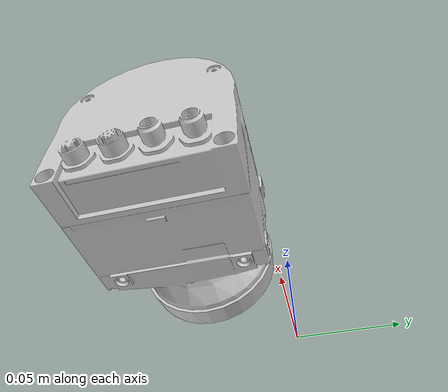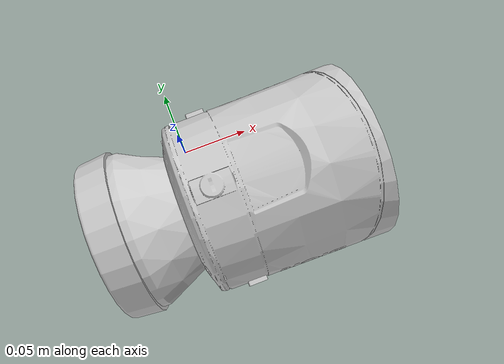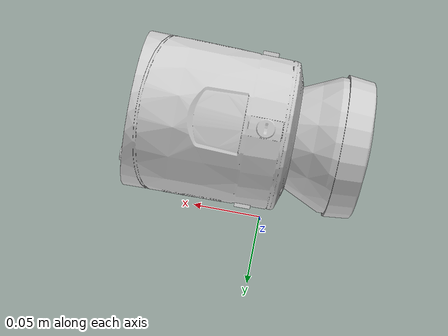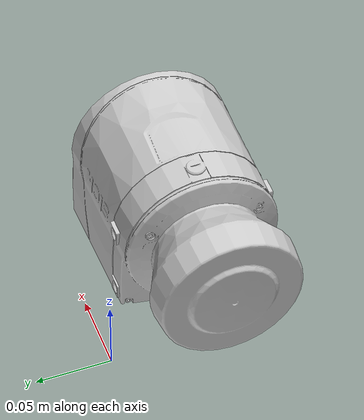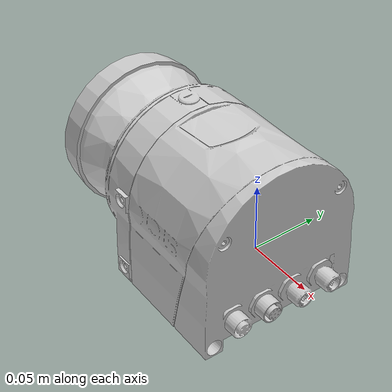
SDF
<?xml version="1.0" ?>
<sdf version="1.5">
  <model name="LMS151">
    <pose>0 0 0.036 0 0 0</pose>
    <link name="link">
      <inertial>
        <mass>0.1</mass>
      </inertial>
      <collision name="collision">
        <geometry>
          <box>
            <size>0.073000 0.276000 0.072000</size>
          </box>
        </geometry>
      </collision>
      <visual name="visual">
        <pose>0 0 0 1.570796 0 -1.570796</pose>
        <geometry>
          <mesh>
            <uri>model://LMS151/meshes/LMS.dae</uri>
          </mesh>
        </geometry>
      </visual>
            <!-- Add a ray sensor, and give it a name -->
      <sensor type="ray" name="sensor">

        <pose>0 0 -0.004645 0 0 0</pose>

        <!-- Enable visualization to see the rays in the GUI -->
        <visualize>true</visualize>

        <!-- Set the update rate of the sensor -->
        <update_rate>30</update_rate>
                <ray>

          <!-- The scan element contains the horizontal and vertical beams.
               We are leaving out the vertical beams for this tutorial. -->
          <scan>

            <!-- The horizontal beams -->
            <horizontal>
              <!-- The velodyne has 32 beams(samples) -->
              <samples>360</samples>

              <resolution>1</resolution>

              <!-- Minimum angle in radians -->
              <min_angle>-1.570796</min_angle>

              <!-- Maximum angle in radians -->
              <max_angle>1.570796</max_angle>
            </horizontal>
          </scan>

          <!-- Range defines characteristics of an individual beam -->
          <range>

            <!-- Minimum distance of the beam -->
            <min>0.5</min>

            <!-- Maximum distance of the beam -->
            <max>50</max>

            <!-- Linear resolution of the beam -->
            <resolution>0.02</resolution>
          </range>
        </ray>
      </sensor>
    </link>
  </model>
</sdf>
